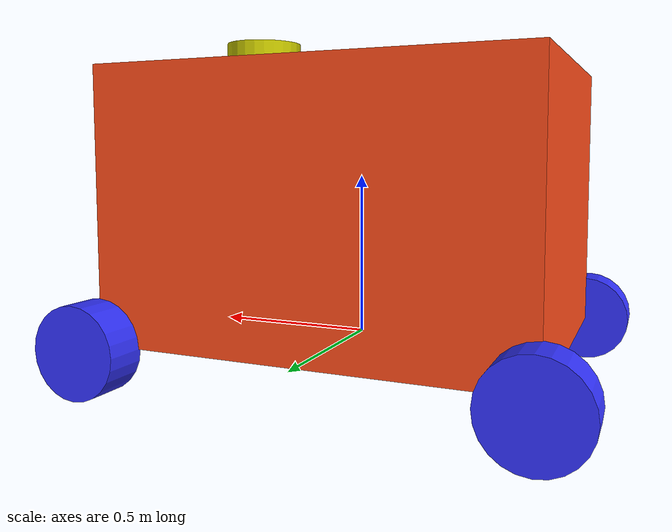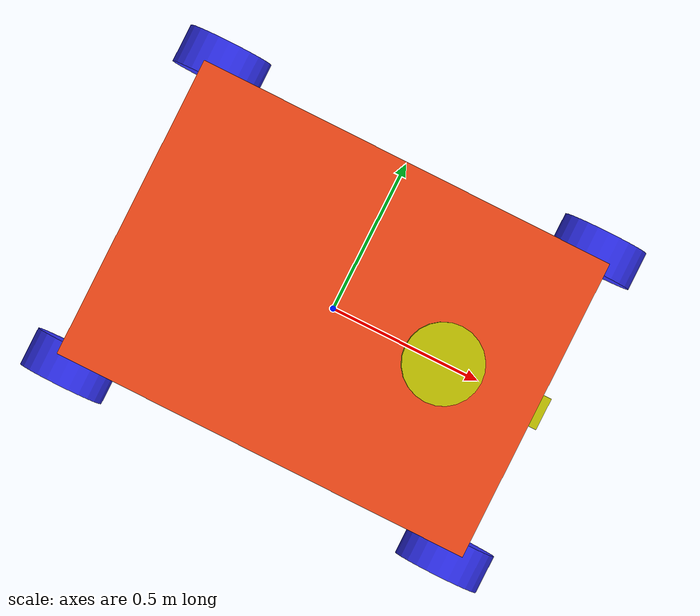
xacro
<?xml version="1.0"?>
<robot xmlns:xacro="http://www.ros.org/wiki/xacro"  name="robot">

    <xacro:include filename="robot_core.xacro" />
    <xacro:include filename="sensors/lidar.xacro" />
    <xacro:include filename="sensors/camera.xacro" />
    <xacro:include filename="gazebo/gazebo_control_diff.xacro" />

</robot>

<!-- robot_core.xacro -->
<robot xmlns:xacro="http://www.ros.org/wiki/xacro" >
    <xacro:include filename="inertial_macros.xacro"/>

    <material name="white">
        <color rgba="1 1 1 1" />
    </material>

    <material name="orange">
        <color rgba="1 0.3 0.1 1"/>
    </material>

    <material name="blue">
        <color rgba="0.2 0.2 1 1"/>
    </material>

    <material name="black">
        <color rgba="0 0 0 1"/>
    </material>
    <material name="red">
        <color rgba="1 0 0 1"/>
    </material>
    <material name="yellow">
        <color rgba="0.8 0.8 0 1"/>
    </material>
    <material name="dark_gray">
        <color rgba="0.5 0.5 0.5 1"/>
    </material>

    <!-- BASE LINK -->

    <link name="base_link">

    </link>

    <!-- CHASSIS LINK -->

    <joint name="chassis_joint" type="fixed">
        <parent link="base_link"/>
        <child link="chassis_link"/>
        <origin xyz="-0.65 0 0"/>
    </joint>

    <link name="chassis_link">
        <visual>
            <origin xyz="0.65 0 0.415"/>
            <geometry>
                <box size="1.3 0.94 0.83"/>
            </geometry>
            <material name="orange"/>
        </visual>
        <xacro:inertial_box mass="0.5" x="1.3" y="0.94" z="0.83">
            <origin xyz="0.65 0 0.415"/>
        </xacro:inertial_box>
    </link>
    <gazebo reference="chassis_link">
        <material>Gazebo/Orange</material>
    </gazebo>

    <!-- Back LEFT WHEEL LINK -->

    <joint name="back_left_wheel_joint" type="continuous">
        <parent link="chassis_link"/>
        <child link="back_left_wheel"/>
        <origin xyz="0 0.525 0" rpy="-${pi/2} 0 0" />
        <axis xyz="0 0 1"/>
    </joint>

    <link name="back_left_wheel">
        <visual>
            <geometry>
                <cylinder radius="0.1397" length="0.125"/>
            </geometry>
            <material name="blue"/>
        </visual>
        <collision>
            <geometry>
                <cylinder radius="0.1397" length="0.125"/>
            </geometry>
        </collision>
        <xacro:inertial_cylinder mass="0.1" length="0.1397" radius="0.125">
            <origin xyz="0 0 0" rpy="0 0 0"/>
        </xacro:inertial_cylinder>
    </link>
    <gazebo reference="back_left_wheel">
        <material>Gazebo/Blue</material>
    </gazebo>

    <!-- Back RIGHT WHEEL LINK -->

    <joint name="back_right_wheel_joint" type="continuous">
        <parent link="chassis_link"/>
        <child link="back_right_wheel"/>
        <origin xyz="0 -0.525 0" rpy="${pi/2} 0 0" />
        <axis xyz="0 0 -1"/>
    </joint>

    <link name="back_right_wheel">
        <visual>
            <geometry>
                <cylinder radius="0.1397" length="0.125"/>
            </geometry>
            <material name="blue"/>
        </visual>
        <collision>
            <geometry>
                <cylinder radius="0.1397" length="0.125"/>
            </geometry>
        </collision>
        <xacro:inertial_cylinder mass="0.1" length="0.1397" radius="0.125">
            <origin xyz="0 0 0" rpy="0 0 0"/>
        </xacro:inertial_cylinder>
    </link>
    <gazebo reference="back_right_wheel">
        <material>Gazebo/Blue</material>
    </gazebo>

    <!-- Steer LINK -->

    <!-- Front LEFT WHEEL LINK -->

    <joint name="front_left_wheel_joint" type="continuous">
        <parent link="chassis_link"/>
        <child link="front_left_wheel"/>
        <origin xyz="1.3 0.525 0" rpy="-${pi/2} 0 0" />
        <axis xyz="0 0 1"/>
    </joint>

    <link name="front_left_wheel">
        <visual>
            <geometry>
                <cylinder radius="0.1397" length="0.125"/>
            </geometry>
            <material name="blue"/>
        </visual>
        <collision>
            <geometry>
                <cylinder radius="0.1397" length="0.125"/>
            </geometry>
        </collision>
        <xacro:inertial_cylinder mass="0.1" length="0.1397" radius="0.125">
            <origin xyz="0 0 0" rpy="0 0 0"/>
        </xacro:inertial_cylinder>
    </link>
    <gazebo reference="front_left_wheel">
        <material>Gazebo/Blue</material>
    </gazebo>

    <!-- RIGHT WHEEL LINK -->

    <joint name="front_right_wheel_joint" type="continuous">
        <parent link="chassis_link"/>
        <child link="front_right_wheel"/>
        <origin xyz="1.3 -0.525 0" rpy="${pi/2} 0 0" />
        <axis xyz="0 0 -1"/>
    </joint>

    <link name="front_right_wheel">
        <visual>
            <geometry>
                <cylinder radius="0.1397" length="0.125"/>
            </geometry>
            <material name="blue"/>
        </visual>
        <collision>
            <geometry>
                <cylinder radius="0.1397" length="0.125"/>
            </geometry>
        </collision>
        <xacro:inertial_cylinder mass="0.1" length="0.1397" radius="0.125">
            <origin xyz="0 0 0" rpy="0 0 0"/>
        </xacro:inertial_cylinder>
    </link>
    <gazebo reference="front_right_wheel">
        <material>Gazebo/Blue</material>
    </gazebo>
    <gazebo>
        <plugin name="skid_steer_drive_controller" filename="libgazebo_ros_skid_steer_drive.so">
            <updateRate>100.0</updateRate>
            <robotNamespace>/</robotNamespace>
            <leftFrontJoint>front_left_wheel_joint</leftFrontJoint>
            <rightFrontJoint>front_right_wheel_joint</rightFrontJoint>
            <leftRearJoint>rear_left_wheel_joint</leftRearJoint>
            <rightRearJoint>rear_right_wheel_joint</rightRearJoint>
            <wheelSeparation>1.05</wheelSeparation>
            <wheelDiameter>0.2794</wheelDiameter>
            <robotBaseFrame>base_link</robotBaseFrame>
            <torque>200</torque>
            <MaxForce>5.0</MaxForce>
            <commandTopic>cmd_vel</commandTopic>
            <odometryTopic>odom</odometryTopic>
            <odometryFrame>odom</odometryFrame>
            <broadcastTF>true</broadcastTF>
            <covariance_x>0.001</covariance_x>
            <covariance_y>0.001</covariance_y>
            <covariance_yaw>0.01</covariance_yaw>
        </plugin>

    </gazebo>

</robot>

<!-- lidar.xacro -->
<robot xmlns:xacro="http://www.ros.org/wiki/xacro" >

    <joint name="laser_joint" type="fixed">
        <parent link="chassis_link"/>
        <child link="laser_frame"/>
        <origin xyz="1.0 0 0.83" rpy="0 0 0"/>
    </joint>

    <link name="laser_frame">
        <visual>
            <geometry>
                <cylinder radius="0.12" length="0.2"/>
            </geometry>
            <material name="yellow"/>
        </visual>
        <collision>
            <geometry>
                <cylinder radius="0.12" length="0.2"/>
            </geometry>
        </collision>
        <xacro:inertial_cylinder mass="0.1" length="0.2" radius="0.12">
            <origin xyz="0 0 0" rpy="0 0 0"/>
        </xacro:inertial_cylinder>
    </link>

    <gazebo reference="laser_frame">
        <material>Gazebo/Red</material>

        <sensor name="laser" type="ray">
            <pose> 0 0 0 0 0 0 </pose>
            <visualize>true</visualize>
            <update_rate>10</update_rate>
            <ray>
                <scan>
                    <horizontal>
                        <samples>360</samples>
                        <min_angle>-3.14</min_angle>
                        <max_angle>3.14</max_angle>
                    </horizontal>
                </scan>
                <range>
                    <min>0.3</min>
                    <max>12</max>
                </range>
            </ray>
            <plugin name="laser_controller" filename="libgazebo_ros_ray_sensor.so">
                <ros>
                    <argument>~/out:=scan</argument>
                </ros>
                <output_type>sensor_msgs/LaserScan</output_type>
                <frame_name>laser_frame</frame_name>
            </plugin>
        </sensor>
    </gazebo>

</robot>

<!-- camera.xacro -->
<robot xmlns:xacro="http://www.ros.org/wiki/xacro" >

    <!-- Camera properties -->
    <xacro:property name="hfov" value="1.089" />
    <xacro:property name="cam_width" value="640" />
    <xacro:property name="cam_height" value="480" />
    <xacro:property name="near" value="0.05" />
    <xacro:property name="far" value="8.0" />

    <joint name="camera_joint" type="fixed">
        <parent link="chassis_link"/>
        <child link="camera_link"/>
        <origin xyz="1.315 0 0.70" rpy="0 0 0"/>
    </joint>

    <link name="camera_link">
        <visual>
            <geometry>
                <box size="0.03 0.1 0.1"/>
            </geometry>
            <material name="yellow"/>
        </visual>
    </link>

    <joint name="camera_optical_joint" type="fixed">
        <parent link="camera_link"/>
        <child link="camera_link_optical"/>
        <origin xyz="0 0 0" rpy="${-pi/2} 0 ${-pi/2}"/>
    </joint>

    <link name="camera_link_optical"></link>
    <gazebo reference="camera_link">
        <material>Gazebo/Red</material>
        <sensor name="camera" type="camera">
            <pose> 0 0 0 0 0 0 </pose>
            <visualize>true</visualize>
            <update_rate>10</update_rate>
            <camera>
                <horizontal_fov>${hfov}</horizontal_fov>
                <image>
                    <format>R8G8B8</format>
                    <width>${cam_width}</width>
                    <height>${cam_height}</height>
                </image>
                <clip>
                    <near>${near}</near>
                    <far>${far}</far>
                </clip>
            </camera>
            <plugin name="gazebo_ros_camera" filename="libgazebo_ros_camera.so">
                <robotNamespace>/</robotNamespace>
                <cameraName>camera</cameraName>
                <imageTopicName>image_raw</imageTopicName>
                <cameraInfoTopicName>camera_info</cameraInfoTopicName>
                <frameName>camera_link_optical</frameName>
            </plugin>
        </sensor>
    </gazebo>

</robot>
